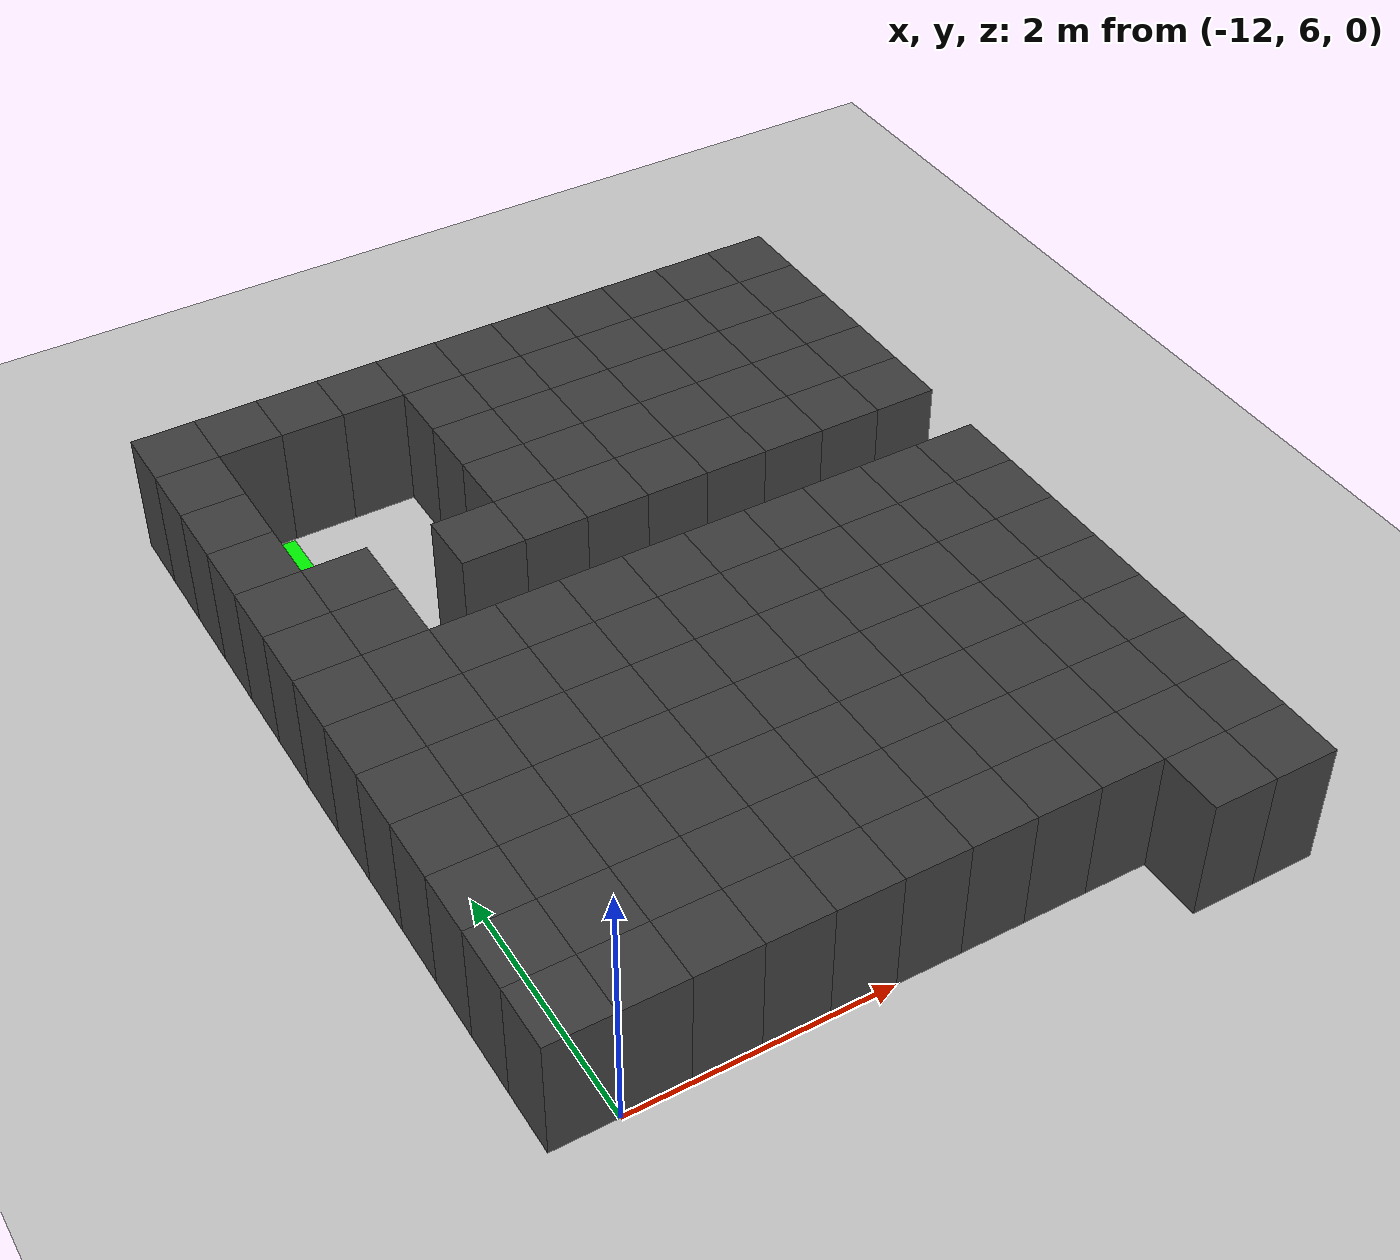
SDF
<sdf version="1.7">
 <world name="map_11779">
  <model name="ground_plane">
   <static>true</static>
   <link name="link">
    <collision name="collision">
     <geometry><plane><normal>0 0 1</normal><size>200 200</size></plane></geometry>
    </collision>
    <visual name="visual">
     <geometry><plane><normal>0 0 1</normal><size>200 200</size></plane></geometry>
     <material><ambient>0.8 0.8 0.8 1</ambient><diffuse>0.8 0.8 0.8 1</diffuse></material>
    </visual>
   </link>
  </model>
  <model name="maze_environment">
   <static>true</static>
   <link name="wall_0">
    <pose>-12.250 12.250 0.500 0 0 0</pose>
    <collision name="col"><geometry><box><size>0.5 0.5 1.0</size></box></geometry></collision>
    <visual name="vis">
     <geometry><box><size>0.5 0.5 1.0</size></box></geometry>
     <material><ambient>0.15 0.15 0.15 1</ambient><diffuse>0.25 0.25 0.25 1</diffuse></material>
    </visual>
   </link>
   <link name="wall_1">
    <pose>-11.750 12.250 0.500 0 0 0</pose>
    <collision name="col"><geometry><box><size>0.5 0.5 1.0</size></box></geometry></collision>
    <visual name="vis">
     <geometry><box><size>0.5 0.5 1.0</size></box></geometry>
     <material><ambient>0.15 0.15 0.15 1</ambient><diffuse>0.25 0.25 0.25 1</diffuse></material>
    </visual>
   </link>
   <link name="wall_2">
    <pose>-11.250 12.250 0.500 0 0 0</pose>
    <collision name="col"><geometry><box><size>0.5 0.5 1.0</size></box></geometry></collision>
    <visual name="vis">
     <geometry><box><size>0.5 0.5 1.0</size></box></geometry>
     <material><ambient>0.15 0.15 0.15 1</ambient><diffuse>0.25 0.25 0.25 1</diffuse></material>
    </visual>
   </link>
   <link name="wall_3">
    <pose>-10.750 12.250 0.500 0 0 0</pose>
    <collision name="col"><geometry><box><size>0.5 0.5 1.0</size></box></geometry></collision>
    <visual name="vis">
     <geometry><box><size>0.5 0.5 1.0</size></box></geometry>
     <material><ambient>0.15 0.15 0.15 1</ambient><diffuse>0.25 0.25 0.25 1</diffuse></material>
    </visual>
   </link>
   <link name="wall_4">
    <pose>-10.250 12.250 0.500 0 0 0</pose>
    <collision name="col"><geometry><box><size>0.5 0.5 1.0</size></box></geometry></collision>
    <visual name="vis">
     <geometry><box><size>0.5 0.5 1.0</size></box></geometry>
     <material><ambient>0.15 0.15 0.15 1</ambient><diffuse>0.25 0.25 0.25 1</diffuse></material>
    </visual>
   </link>
   <link name="wall_5">
    <pose>-9.750 12.250 0.500 0 0 0</pose>
    <collision name="col"><geometry><box><size>0.5 0.5 1.0</size></box></geometry></collision>
    <visual name="vis">
     <geometry><box><size>0.5 0.5 1.0</size></box></geometry>
     <material><ambient>0.15 0.15 0.15 1</ambient><diffuse>0.25 0.25 0.25 1</diffuse></material>
    </visual>
   </link>
   <link name="wall_6">
    <pose>-9.250 12.250 0.500 0 0 0</pose>
    <collision name="col"><geometry><box><size>0.5 0.5 1.0</size></box></geometry></collision>
    <visual name="vis">
     <geometry><box><size>0.5 0.5 1.0</size></box></geometry>
     <material><ambient>0.15 0.15 0.15 1</ambient><diffuse>0.25 0.25 0.25 1</diffuse></material>
    </visual>
   </link>
   <link name="wall_7">
    <pose>-8.750 12.250 0.500 0 0 0</pose>
    <collision name="col"><geometry><box><size>0.5 0.5 1.0</size></box></geometry></collision>
    <visual name="vis">
     <geometry><box><size>0.5 0.5 1.0</size></box></geometry>
     <material><ambient>0.15 0.15 0.15 1</ambient><diffuse>0.25 0.25 0.25 1</diffuse></material>
    </visual>
   </link>
   <link name="wall_8">
    <pose>-8.250 12.250 0.500 0 0 0</pose>
    <collision name="col"><geometry><box><size>0.5 0.5 1.0</size></box></geometry></collision>
    <visual name="vis">
     <geometry><box><size>0.5 0.5 1.0</size></box></geometry>
     <material><ambient>0.15 0.15 0.15 1</ambient><diffuse>0.25 0.25 0.25 1</diffuse></material>
    </visual>
   </link>
   <link name="wall_9">
    <pose>-7.750 12.250 0.500 0 0 0</pose>
    <collision name="col"><geometry><box><size>0.5 0.5 1.0</size></box></geometry></collision>
    <visual name="vis">
     <geometry><box><size>0.5 0.5 1.0</size></box></geometry>
     <material><ambient>0.15 0.15 0.15 1</ambient><diffuse>0.25 0.25 0.25 1</diffuse></material>
    </visual>
   </link>
   <link name="wall_10">
    <pose>-7.250 12.250 0.500 0 0 0</pose>
    <collision name="col"><geometry><box><size>0.5 0.5 1.0</size></box></geometry></collision>
    <visual name="vis">
     <geometry><box><size>0.5 0.5 1.0</size></box></geometry>
     <material><ambient>0.15 0.15 0.15 1</ambient><diffuse>0.25 0.25 0.25 1</diffuse></material>
    </visual>
   </link>
   <link name="wall_50">
    <pose>-12.250 11.750 0.500 0 0 0</pose>
    <collision name="col"><geometry><box><size>0.5 0.5 1.0</size></box></geometry></collision>
    <visual name="vis">
     <geometry><box><size>0.5 0.5 1.0</size></box></geometry>
     <material><ambient>0.15 0.15 0.15 1</ambient><diffuse>0.25 0.25 0.25 1</diffuse></material>
    </visual>
   </link>
   <link name="wall_51">
    <pose>-10.250 11.750 0.500 0 0 0</pose>
    <collision name="col"><geometry><box><size>0.5 0.5 1.0</size></box></geometry></collision>
    <visual name="vis">
     <geometry><box><size>0.5 0.5 1.0</size></box></geometry>
     <material><ambient>0.15 0.15 0.15 1</ambient><diffuse>0.25 0.25 0.25 1</diffuse></material>
    </visual>
   </link>
   <link name="wall_52">
    <pose>-9.750 11.750 0.500 0 0 0</pose>
    <collision name="col"><geometry><box><size>0.5 0.5 1.0</size></box></geometry></collision>
    <visual name="vis">
     <geometry><box><size>0.5 0.5 1.0</size></box></geometry>
     <material><ambient>0.15 0.15 0.15 1</ambient><diffuse>0.25 0.25 0.25 1</diffuse></material>
    </visual>
   </link>
   <link name="wall_53">
    <pose>-9.250 11.750 0.500 0 0 0</pose>
    <collision name="col"><geometry><box><size>0.5 0.5 1.0</size></box></geometry></collision>
    <visual name="vis">
     <geometry><box><size>0.5 0.5 1.0</size></box></geometry>
     <material><ambient>0.15 0.15 0.15 1</ambient><diffuse>0.25 0.25 0.25 1</diffuse></material>
    </visual>
   </link>
   <link name="wall_54">
    <pose>-8.750 11.750 0.500 0 0 0</pose>
    <collision name="col"><geometry><box><size>0.5 0.5 1.0</size></box></geometry></collision>
    <visual name="vis">
     <geometry><box><size>0.5 0.5 1.0</size></box></geometry>
     <material><ambient>0.15 0.15 0.15 1</ambient><diffuse>0.25 0.25 0.25 1</diffuse></material>
    </visual>
   </link>
   <link name="wall_55">
    <pose>-8.250 11.750 0.500 0 0 0</pose>
    <collision name="col"><geometry><box><size>0.5 0.5 1.0</size></box></geometry></collision>
    <visual name="vis">
     <geometry><box><size>0.5 0.5 1.0</size></box></geometry>
     <material><ambient>0.15 0.15 0.15 1</ambient><diffuse>0.25 0.25 0.25 1</diffuse></material>
    </visual>
   </link>
   <link name="wall_56">
    <pose>-7.750 11.750 0.500 0 0 0</pose>
    <collision name="col"><geometry><box><size>0.5 0.5 1.0</size></box></geometry></collision>
    <visual name="vis">
     <geometry><box><size>0.5 0.5 1.0</size></box></geometry>
     <material><ambient>0.15 0.15 0.15 1</ambient><diffuse>0.25 0.25 0.25 1</diffuse></material>
    </visual>
   </link>
   <link name="wall_57">
    <pose>-7.250 11.750 0.500 0 0 0</pose>
    <collision name="col"><geometry><box><size>0.5 0.5 1.0</size></box></geometry></collision>
    <visual name="vis">
     <geometry><box><size>0.5 0.5 1.0</size></box></geometry>
     <material><ambient>0.15 0.15 0.15 1</ambient><diffuse>0.25 0.25 0.25 1</diffuse></material>
    </visual>
   </link>
   <link name="wall_91">
    <pose>-12.250 11.250 0.500 0 0 0</pose>
    <collision name="col"><geometry><box><size>0.5 0.5 1.0</size></box></geometry></collision>
    <visual name="vis">
     <geometry><box><size>0.5 0.5 1.0</size></box></geometry>
     <material><ambient>0.15 0.15 0.15 1</ambient><diffuse>0.25 0.25 0.25 1</diffuse></material>
    </visual>
   </link>
   <link name="wall_92">
    <pose>-10.250 11.250 0.500 0 0 0</pose>
    <collision name="col"><geometry><box><size>0.5 0.5 1.0</size></box></geometry></collision>
    <visual name="vis">
     <geometry><box><size>0.5 0.5 1.0</size></box></geometry>
     <material><ambient>0.15 0.15 0.15 1</ambient><diffuse>0.25 0.25 0.25 1</diffuse></material>
    </visual>
   </link>
   <link name="wall_93">
    <pose>-9.750 11.250 0.500 0 0 0</pose>
    <collision name="col"><geometry><box><size>0.5 0.5 1.0</size></box></geometry></collision>
    <visual name="vis">
     <geometry><box><size>0.5 0.5 1.0</size></box></geometry>
     <material><ambient>0.15 0.15 0.15 1</ambient><diffuse>0.25 0.25 0.25 1</diffuse></material>
    </visual>
   </link>
   <link name="wall_94">
    <pose>-9.250 11.250 0.500 0 0 0</pose>
    <collision name="col"><geometry><box><size>0.5 0.5 1.0</size></box></geometry></collision>
    <visual name="vis">
     <geometry><box><size>0.5 0.5 1.0</size></box></geometry>
     <material><ambient>0.15 0.15 0.15 1</ambient><diffuse>0.25 0.25 0.25 1</diffuse></material>
    </visual>
   </link>
   <link name="wall_95">
    <pose>-8.750 11.250 0.500 0 0 0</pose>
    <collision name="col"><geometry><box><size>0.5 0.5 1.0</size></box></geometry></collision>
    <visual name="vis">
     <geometry><box><size>0.5 0.5 1.0</size></box></geometry>
     <material><ambient>0.15 0.15 0.15 1</ambient><diffuse>0.25 0.25 0.25 1</diffuse></material>
    </visual>
   </link>
   <link name="wall_96">
    <pose>-8.250 11.250 0.500 0 0 0</pose>
    <collision name="col"><geometry><box><size>0.5 0.5 1.0</size></box></geometry></collision>
    <visual name="vis">
     <geometry><box><size>0.5 0.5 1.0</size></box></geometry>
     <material><ambient>0.15 0.15 0.15 1</ambient><diffuse>0.25 0.25 0.25 1</diffuse></material>
    </visual>
   </link>
   <link name="wall_97">
    <pose>-7.750 11.250 0.500 0 0 0</pose>
    <collision name="col"><geometry><box><size>0.5 0.5 1.0</size></box></geometry></collision>
    <visual name="vis">
     <geometry><box><size>0.5 0.5 1.0</size></box></geometry>
     <material><ambient>0.15 0.15 0.15 1</ambient><diffuse>0.25 0.25 0.25 1</diffuse></material>
    </visual>
   </link>
   <link name="wall_98">
    <pose>-7.250 11.250 0.500 0 0 0</pose>
    <collision name="col"><geometry><box><size>0.5 0.5 1.0</size></box></geometry></collision>
    <visual name="vis">
     <geometry><box><size>0.5 0.5 1.0</size></box></geometry>
     <material><ambient>0.15 0.15 0.15 1</ambient><diffuse>0.25 0.25 0.25 1</diffuse></material>
    </visual>
   </link>
   <link name="wall_132">
    <pose>-12.250 10.750 0.500 0 0 0</pose>
    <collision name="col"><geometry><box><size>0.5 0.5 1.0</size></box></geometry></collision>
    <visual name="vis">
     <geometry><box><size>0.5 0.5 1.0</size></box></geometry>
     <material><ambient>0.15 0.15 0.15 1</ambient><diffuse>0.25 0.25 0.25 1</diffuse></material>
    </visual>
   </link>
   <link name="wall_133">
    <pose>-10.250 10.750 0.500 0 0 0</pose>
    <collision name="col"><geometry><box><size>0.5 0.5 1.0</size></box></geometry></collision>
    <visual name="vis">
     <geometry><box><size>0.5 0.5 1.0</size></box></geometry>
     <material><ambient>0.15 0.15 0.15 1</ambient><diffuse>0.25 0.25 0.25 1</diffuse></material>
    </visual>
   </link>
   <link name="wall_134">
    <pose>-9.750 10.750 0.500 0 0 0</pose>
    <collision name="col"><geometry><box><size>0.5 0.5 1.0</size></box></geometry></collision>
    <visual name="vis">
     <geometry><box><size>0.5 0.5 1.0</size></box></geometry>
     <material><ambient>0.15 0.15 0.15 1</ambient><diffuse>0.25 0.25 0.25 1</diffuse></material>
    </visual>
   </link>
   <link name="wall_135">
    <pose>-9.250 10.750 0.500 0 0 0</pose>
    <collision name="col"><geometry><box><size>0.5 0.5 1.0</size></box></geometry></collision>
    <visual name="vis">
     <geometry><box><size>0.5 0.5 1.0</size></box></geometry>
     <material><ambient>0.15 0.15 0.15 1</ambient><diffuse>0.25 0.25 0.25 1</diffuse></material>
    </visual>
   </link>
   <link name="wall_136">
    <pose>-8.750 10.750 0.500 0 0 0</pose>
    <collision name="col"><geometry><box><size>0.5 0.5 1.0</size></box></geometry></collision>
    <visual name="vis">
     <geometry><box><size>0.5 0.5 1.0</size></box></geometry>
     <material><ambient>0.15 0.15 0.15 1</ambient><diffuse>0.25 0.25 0.25 1</diffuse></material>
    </visual>
   </link>
   <link name="wall_137">
    <pose>-8.250 10.750 0.500 0 0 0</pose>
    <collision name="col"><geometry><box><size>0.5 0.5 1.0</size></box></geometry></collision>
    <visual name="vis">
     <geometry><box><size>0.5 0.5 1.0</size></box></geometry>
     <material><ambient>0.15 0.15 0.15 1</ambient><diffuse>0.25 0.25 0.25 1</diffuse></material>
    </visual>
   </link>
   <link name="wall_138">
    <pose>-7.750 10.750 0.500 0 0 0</pose>
    <collision name="col"><geometry><box><size>0.5 0.5 1.0</size></box></geometry></collision>
    <visual name="vis">
     <geometry><box><size>0.5 0.5 1.0</size></box></geometry>
     <material><ambient>0.15 0.15 0.15 1</ambient><diffuse>0.25 0.25 0.25 1</diffuse></material>
    </visual>
   </link>
   <link name="wall_139">
    <pose>-7.250 10.750 0.500 0 0 0</pose>
    <collision name="col"><geometry><box><size>0.5 0.5 1.0</size></box></geometry></collision>
    <visual name="vis">
     <geometry><box><size>0.5 0.5 1.0</size></box></geometry>
     <material><ambient>0.15 0.15 0.15 1</ambient><diffuse>0.25 0.25 0.25 1</diffuse></material>
    </visual>
   </link>
   <link name="wall_173">
    <pose>-12.250 10.250 0.500 0 0 0</pose>
    <collision name="col"><geometry><box><size>0.5 0.5 1.0</size></box></geometry></collision>
    <visual name="vis">
     <geometry><box><size>0.5 0.5 1.0</size></box></geometry>
     <material><ambient>0.15 0.15 0.15 1</ambient><diffuse>0.25 0.25 0.25 1</diffuse></material>
    </visual>
   </link>
   <link name="wall_174">
    <pose>-11.750 10.250 0.500 0 0 0</pose>
    <collision name="col"><geometry><box><size>0.5 0.5 1.0</size></box></geometry></collision>
    <visual name="vis">
     <geometry><box><size>0.5 0.5 1.0</size></box></geometry>
     <material><ambient>0.15 0.15 0.15 1</ambient><diffuse>0.25 0.25 0.25 1</diffuse></material>
    </visual>
   </link>
   <link name="wall_175">
    <pose>-10.750 10.250 0.500 0 0 0</pose>
    <collision name="col"><geometry><box><size>0.5 0.5 1.0</size></box></geometry></collision>
    <visual name="vis">
     <geometry><box><size>0.5 0.5 1.0</size></box></geometry>
     <material><ambient>0.15 0.15 0.15 1</ambient><diffuse>0.25 0.25 0.25 1</diffuse></material>
    </visual>
   </link>
   <link name="wall_176">
    <pose>-10.250 10.250 0.500 0 0 0</pose>
    <collision name="col"><geometry><box><size>0.5 0.5 1.0</size></box></geometry></collision>
    <visual name="vis">
     <geometry><box><size>0.5 0.5 1.0</size></box></geometry>
     <material><ambient>0.15 0.15 0.15 1</ambient><diffuse>0.25 0.25 0.25 1</diffuse></material>
    </visual>
   </link>
   <link name="wall_177">
    <pose>-9.750 10.250 0.500 0 0 0</pose>
    <collision name="col"><geometry><box><size>0.5 0.5 1.0</size></box></geometry></collision>
    <visual name="vis">
     <geometry><box><size>0.5 0.5 1.0</size></box></geometry>
     <material><ambient>0.15 0.15 0.15 1</ambient><diffuse>0.25 0.25 0.25 1</diffuse></material>
    </visual>
   </link>
   <link name="wall_178">
    <pose>-9.250 10.250 0.500 0 0 0</pose>
    <collision name="col"><geometry><box><size>0.5 0.5 1.0</size></box></geometry></collision>
    <visual name="vis">
     <geometry><box><size>0.5 0.5 1.0</size></box></geometry>
     <material><ambient>0.15 0.15 0.15 1</ambient><diffuse>0.25 0.25 0.25 1</diffuse></material>
    </visual>
   </link>
   <link name="wall_179">
    <pose>-8.750 10.250 0.500 0 0 0</pose>
    <collision name="col"><geometry><box><size>0.5 0.5 1.0</size></box></geometry></collision>
    <visual name="vis">
     <geometry><box><size>0.5 0.5 1.0</size></box></geometry>
     <material><ambient>0.15 0.15 0.15 1</ambient><diffuse>0.25 0.25 0.25 1</diffuse></material>
    </visual>
   </link>
   <link name="wall_180">
    <pose>-8.250 10.250 0.500 0 0 0</pose>
    <collision name="col"><geometry><box><size>0.5 0.5 1.0</size></box></geometry></collision>
    <visual name="vis">
     <geometry><box><size>0.5 0.5 1.0</size></box></geometry>
     <material><ambient>0.15 0.15 0.15 1</ambient><diffuse>0.25 0.25 0.25 1</diffuse></material>
    </visual>
   </link>
   <link name="wall_181">
    <pose>-7.750 10.250 0.500 0 0 0</pose>
    <collision name="col"><geometry><box><size>0.5 0.5 1.0</size></box></geometry></collision>
    <visual name="vis">
     <geometry><box><size>0.5 0.5 1.0</size></box></geometry>
     <material><ambient>0.15 0.15 0.15 1</ambient><diffuse>0.25 0.25 0.25 1</diffuse></material>
    </visual>
   </link>
   <link name="wall_182">
    <pose>-7.250 10.250 0.500 0 0 0</pose>
    <collision name="col"><geometry><box><size>0.5 0.5 1.0</size></box></geometry></collision>
    <visual name="vis">
     <geometry><box><size>0.5 0.5 1.0</size></box></geometry>
     <material><ambient>0.15 0.15 0.15 1</ambient><diffuse>0.25 0.25 0.25 1</diffuse></material>
    </visual>
   </link>
   <link name="wall_216">
    <pose>-12.250 9.750 0.500 0 0 0</pose>
    <collision name="col"><geometry><box><size>0.5 0.5 1.0</size></box></geometry></collision>
    <visual name="vis">
     <geometry><box><size>0.5 0.5 1.0</size></box></geometry>
     <material><ambient>0.15 0.15 0.15 1</ambient><diffuse>0.25 0.25 0.25 1</diffuse></material>
    </visual>
   </link>
   <link name="wall_217">
    <pose>-11.750 9.750 0.500 0 0 0</pose>
    <collision name="col"><geometry><box><size>0.5 0.5 1.0</size></box></geometry></collision>
    <visual name="vis">
     <geometry><box><size>0.5 0.5 1.0</size></box></geometry>
     <material><ambient>0.15 0.15 0.15 1</ambient><diffuse>0.25 0.25 0.25 1</diffuse></material>
    </visual>
   </link>
   <link name="wall_249">
    <pose>-12.250 9.250 0.500 0 0 0</pose>
    <collision name="col"><geometry><box><size>0.5 0.5 1.0</size></box></geometry></collision>
    <visual name="vis">
     <geometry><box><size>0.5 0.5 1.0</size></box></geometry>
     <material><ambient>0.15 0.15 0.15 1</ambient><diffuse>0.25 0.25 0.25 1</diffuse></material>
    </visual>
   </link>
   <link name="wall_250">
    <pose>-11.750 9.250 0.500 0 0 0</pose>
    <collision name="col"><geometry><box><size>0.5 0.5 1.0</size></box></geometry></collision>
    <visual name="vis">
     <geometry><box><size>0.5 0.5 1.0</size></box></geometry>
     <material><ambient>0.15 0.15 0.15 1</ambient><diffuse>0.25 0.25 0.25 1</diffuse></material>
    </visual>
   </link>
   <link name="wall_251">
    <pose>-11.250 9.250 0.500 0 0 0</pose>
    <collision name="col"><geometry><box><size>0.5 0.5 1.0</size></box></geometry></collision>
    <visual name="vis">
     <geometry><box><size>0.5 0.5 1.0</size></box></geometry>
     <material><ambient>0.15 0.15 0.15 1</ambient><diffuse>0.25 0.25 0.25 1</diffuse></material>
    </visual>
   </link>
   <link name="wall_252">
    <pose>-10.750 9.250 0.500 0 0 0</pose>
    <collision name="col"><geometry><box><size>0.5 0.5 1.0</size></box></geometry></collision>
    <visual name="vis">
     <geometry><box><size>0.5 0.5 1.0</size></box></geometry>
     <material><ambient>0.15 0.15 0.15 1</ambient><diffuse>0.25 0.25 0.25 1</diffuse></material>
    </visual>
   </link>
   <link name="wall_253">
    <pose>-10.250 9.250 0.500 0 0 0</pose>
    <collision name="col"><geometry><box><size>0.5 0.5 1.0</size></box></geometry></collision>
    <visual name="vis">
     <geometry><box><size>0.5 0.5 1.0</size></box></geometry>
     <material><ambient>0.15 0.15 0.15 1</ambient><diffuse>0.25 0.25 0.25 1</diffuse></material>
    </visual>
   </link>
   <link name="wall_254">
    <pose>-9.750 9.250 0.500 0 0 0</pose>
    <collision name="col"><geometry><box><size>0.5 0.5 1.0</size></box></geometry></collision>
    <visual name="vis">
     <geometry><box><size>0.5 0.5 1.0</size></box></geometry>
     <material><ambient>0.15 0.15 0.15 1</ambient><diffuse>0.25 0.25 0.25 1</diffuse></material>
    </visual>
   </link>
   <link name="wall_255">
    <pose>-9.250 9.250 0.500 0 0 0</pose>
    <collision name="col"><geometry><box><size>0.5 0.5 1.0</size></box></geometry></collision>
    <visual name="vis">
     <geometry><box><size>0.5 0.5 1.0</size></box></geometry>
     <material><ambient>0.15 0.15 0.15 1</ambient><diffuse>0.25 0.25 0.25 1</diffuse></material>
    </visual>
   </link>
   <link name="wall_256">
    <pose>-8.750 9.250 0.500 0 0 0</pose>
    <collision name="col"><geometry><box><size>0.5 0.5 1.0</size></box></geometry></collision>
    <visual name="vis">
     <geometry><box><size>0.5 0.5 1.0</size></box></geometry>
     <material><ambient>0.15 0.15 0.15 1</ambient><diffuse>0.25 0.25 0.25 1</diffuse></material>
    </visual>
   </link>
   <link name="wall_257">
    <pose>-8.250 9.250 0.500 0 0 0</pose>
    <collision name="col"><geometry><box><size>0.5 0.5 1.0</size></box></geometry></collision>
    <visual name="vis">
     <geometry><box><size>0.5 0.5 1.0</size></box></geometry>
     <material><ambient>0.15 0.15 0.15 1</ambient><diffuse>0.25 0.25 0.25 1</diffuse></material>
    </visual>
   </link>
   <link name="wall_258">
    <pose>-7.750 9.250 0.500 0 0 0</pose>
    <collision name="col"><geometry><box><size>0.5 0.5 1.0</size></box></geometry></collision>
    <visual name="vis">
     <geometry><box><size>0.5 0.5 1.0</size></box></geometry>
     <material><ambient>0.15 0.15 0.15 1</ambient><diffuse>0.25 0.25 0.25 1</diffuse></material>
    </visual>
   </link>
   <link name="wall_259">
    <pose>-7.250 9.250 0.500 0 0 0</pose>
    <collision name="col"><geometry><box><size>0.5 0.5 1.0</size></box></geometry></collision>
    <visual name="vis">
     <geometry><box><size>0.5 0.5 1.0</size></box></geometry>
     <material><ambient>0.15 0.15 0.15 1</ambient><diffuse>0.25 0.25 0.25 1</diffuse></material>
    </visual>
   </link>
   <link name="wall_293">
    <pose>-12.250 8.750 0.500 0 0 0</pose>
    <collision name="col"><geometry><box><size>0.5 0.5 1.0</size></box></geometry></collision>
    <visual name="vis">
     <geometry><box><size>0.5 0.5 1.0</size></box></geometry>
     <material><ambient>0.15 0.15 0.15 1</ambient><diffuse>0.25 0.25 0.25 1</diffuse></material>
    </visual>
   </link>
   <link name="wall_294">
    <pose>-11.750 8.750 0.500 0 0 0</pose>
    <collision name="col"><geometry><box><size>0.5 0.5 1.0</size></box></geometry></collision>
    <visual name="vis">
     <geometry><box><size>0.5 0.5 1.0</size></box></geometry>
     <material><ambient>0.15 0.15 0.15 1</ambient><diffuse>0.25 0.25 0.25 1</diffuse></material>
    </visual>
   </link>
   <link name="wall_295">
    <pose>-11.250 8.750 0.500 0 0 0</pose>
    <collision name="col"><geometry><box><size>0.5 0.5 1.0</size></box></geometry></collision>
    <visual name="vis">
     <geometry><box><size>0.5 0.5 1.0</size></box></geometry>
     <material><ambient>0.15 0.15 0.15 1</ambient><diffuse>0.25 0.25 0.25 1</diffuse></material>
    </visual>
   </link>
   <link name="wall_296">
    <pose>-10.750 8.750 0.500 0 0 0</pose>
    <collision name="col"><geometry><box><size>0.5 0.5 1.0</size></box></geometry></collision>
    <visual name="vis">
     <geometry><box><size>0.5 0.5 1.0</size></box></geometry>
     <material><ambient>0.15 0.15 0.15 1</ambient><diffuse>0.25 0.25 0.25 1</diffuse></material>
    </visual>
   </link>
   <link name="wall_297">
    <pose>-10.250 8.750 0.500 0 0 0</pose>
    <collision name="col"><geometry><box><size>0.5 0.5 1.0</size></box></geometry></collision>
    <visual name="vis">
     <geometry><box><size>0.5 0.5 1.0</size></box></geometry>
     <material><ambient>0.15 0.15 0.15 1</ambient><diffuse>0.25 0.25 0.25 1</diffuse></material>
    </visual>
   </link>
   <link name="wall_298">
    <pose>-9.750 8.750 0.500 0 0 0</pose>
    <collision name="col"><geometry><box><size>0.5 0.5 1.0</size></box></geometry></collision>
    <visual name="vis">
     <geometry><box><size>0.5 0.5 1.0</size></box></geometry>
     <material><ambient>0.15 0.15 0.15 1</ambient><diffuse>0.25 0.25 0.25 1</diffuse></material>
    </visual>
   </link>
   <link name="wall_299">
    <pose>-9.250 8.750 0.500 0 0 0</pose>
    <collision name="col"><geometry><box><size>0.5 0.5 1.0</size></box></geometry></collision>
    <visual name="vis">
     <geometry><box><size>0.5 0.5 1.0</size></box></geometry>
     <material><ambient>0.15 0.15 0.15 1</ambient><diffuse>0.25 0.25 0.25 1</diffuse></material>
    </visual>
   </link>
   <link name="wall_300">
    <pose>-8.750 8.750 0.500 0 0 0</pose>
    <collision name="col"><geometry><box><size>0.5 0.5 1.0</size></box></geometry></collision>
    <visual name="vis">
     <geometry><box><size>0.5 0.5 1.0</size></box></geometry>
     <material><ambient>0.15 0.15 0.15 1</ambient><diffuse>0.25 0.25 0.25 1</diffuse></material>
    </visual>
   </link>
   <link name="wall_301">
    <pose>-8.250 8.750 0.500 0 0 0</pose>
    <collision name="col"><geometry><box><size>0.5 0.5 1.0</size></box></geometry></collision>
    <visual name="vis">
     <geometry><box><size>0.5 0.5 1.0</size></box></geometry>
     <material><ambient>0.15 0.15 0.15 1</ambient><diffuse>0.25 0.25 0.25 1</diffuse></material>
    </visual>
   </link>
   <link name="wall_302">
    <pose>-7.750 8.750 0.500 0 0 0</pose>
    <collision name="col"><geometry><box><size>0.5 0.5 1.0</size></box></geometry></collision>
    <visual name="vis">
     <geometry><box><size>0.5 0.5 1.0</size></box></geometry>
     <material><ambient>0.15 0.15 0.15 1</ambient><diffuse>0.25 0.25 0.25 1</diffuse></material>
    </visual>
   </link>
   <link name="wall_303">
    <pose>-7.250 8.750 0.500 0 0 0</pose>
    <collision name="col"><geometry><box><size>0.5 0.5 1.0</size></box></geometry></collision>
    <visual name="vis">
     <geometry><box><size>0.5 0.5 1.0</size></box></geometry>
     <material><ambient>0.15 0.15 0.15 1</ambient><diffuse>0.25 0.25 0.25 1</diffuse></material>
    </visual>
   </link>
   <link name="wall_337">
    <pose>-12.250 8.250 0.500 0 0 0</pose>
    <collision name="col"><geometry><box><size>0.5 0.5 1.0</size></box></geometry></collision>
    <visual name="vis">
     <geometry><box><size>0.5 0.5 1.0</size></box></geometry>
     <material><ambient>0.15 0.15 0.15 1</ambient><diffuse>0.25 0.25 0.25 1</diffuse></material>
    </visual>
   </link>
   <link name="wall_338">
    <pose>-11.750 8.250 0.500 0 0 0</pose>
    <collision name="col"><geometry><box><size>0.5 0.5 1.0</size></box></geometry></collision>
    <visual name="vis">
     <geometry><box><size>0.5 0.5 1.0</size></box></geometry>
     <material><ambient>0.15 0.15 0.15 1</ambient><diffuse>0.25 0.25 0.25 1</diffuse></material>
    </visual>
   </link>
   <link name="wall_339">
    <pose>-11.250 8.250 0.500 0 0 0</pose>
    <collision name="col"><geometry><box><size>0.5 0.5 1.0</size></box></geometry></collision>
    <visual name="vis">
     <geometry><box><size>0.5 0.5 1.0</size></box></geometry>
     <material><ambient>0.15 0.15 0.15 1</ambient><diffuse>0.25 0.25 0.25 1</diffuse></material>
    </visual>
   </link>
   <link name="wall_340">
    <pose>-10.750 8.250 0.500 0 0 0</pose>
    <collision name="col"><geometry><box><size>0.5 0.5 1.0</size></box></geometry></collision>
    <visual name="vis">
     <geometry><box><size>0.5 0.5 1.0</size></box></geometry>
     <material><ambient>0.15 0.15 0.15 1</ambient><diffuse>0.25 0.25 0.25 1</diffuse></material>
    </visual>
   </link>
   <link name="wall_341">
    <pose>-10.250 8.250 0.500 0 0 0</pose>
    <collision name="col"><geometry><box><size>0.5 0.5 1.0</size></box></geometry></collision>
    <visual name="vis">
     <geometry><box><size>0.5 0.5 1.0</size></box></geometry>
     <material><ambient>0.15 0.15 0.15 1</ambient><diffuse>0.25 0.25 0.25 1</diffuse></material>
    </visual>
   </link>
   <link name="wall_342">
    <pose>-9.750 8.250 0.500 0 0 0</pose>
    <collision name="col"><geometry><box><size>0.5 0.5 1.0</size></box></geometry></collision>
    <visual name="vis">
     <geometry><box><size>0.5 0.5 1.0</size></box></geometry>
     <material><ambient>0.15 0.15 0.15 1</ambient><diffuse>0.25 0.25 0.25 1</diffuse></material>
    </visual>
   </link>
   <link name="wall_343">
    <pose>-9.250 8.250 0.500 0 0 0</pose>
    <collision name="col"><geometry><box><size>0.5 0.5 1.0</size></box></geometry></collision>
    <visual name="vis">
     <geometry><box><size>0.5 0.5 1.0</size></box></geometry>
     <material><ambient>0.15 0.15 0.15 1</ambient><diffuse>0.25 0.25 0.25 1</diffuse></material>
    </visual>
   </link>
   <link name="wall_344">
    <pose>-8.750 8.250 0.500 0 0 0</pose>
    <collision name="col"><geometry><box><size>0.5 0.5 1.0</size></box></geometry></collision>
    <visual name="vis">
     <geometry><box><size>0.5 0.5 1.0</size></box></geometry>
     <material><ambient>0.15 0.15 0.15 1</ambient><diffuse>0.25 0.25 0.25 1</diffuse></material>
    </visual>
   </link>
   <link name="wall_345">
    <pose>-8.250 8.250 0.500 0 0 0</pose>
    <collision name="col"><geometry><box><size>0.5 0.5 1.0</size></box></geometry></collision>
    <visual name="vis">
     <geometry><box><size>0.5 0.5 1.0</size></box></geometry>
     <material><ambient>0.15 0.15 0.15 1</ambient><diffuse>0.25 0.25 0.25 1</diffuse></material>
    </visual>
   </link>
   <link name="wall_346">
    <pose>-7.750 8.250 0.500 0 0 0</pose>
    <collision name="col"><geometry><box><size>0.5 0.5 1.0</size></box></geometry></collision>
    <visual name="vis">
     <geometry><box><size>0.5 0.5 1.0</size></box></geometry>
     <material><ambient>0.15 0.15 0.15 1</ambient><diffuse>0.25 0.25 0.25 1</diffuse></material>
    </visual>
   </link>
   <link name="wall_347">
    <pose>-7.250 8.250 0.500 0 0 0</pose>
    <collision name="col"><geometry><box><size>0.5 0.5 1.0</size></box></geometry></collision>
    <visual name="vis">
     <geometry><box><size>0.5 0.5 1.0</size></box></geometry>
     <material><ambient>0.15 0.15 0.15 1</ambient><diffuse>0.25 0.25 0.25 1</diffuse></material>
    </visual>
   </link>
   <link name="wall_381">
    <pose>-12.250 7.750 0.500 0 0 0</pose>
    <collision name="col"><geometry><box><size>0.5 0.5 1.0</size></box></geometry></collision>
    <visual name="vis">
     <geometry><box><size>0.5 0.5 1.0</size></box></geometry>
     <material><ambient>0.15 0.15 0.15 1</ambient><diffuse>0.25 0.25 0.25 1</diffuse></material>
    </visual>
   </link>
   <link name="wall_382">
    <pose>-11.750 7.750 0.500 0 0 0</pose>
    <collision name="col"><geometry><box><size>0.5 0.5 1.0</size></box></geometry></collision>
    <visual name="vis">
     <geometry><box><size>0.5 0.5 1.0</size></box></geometry>
     <material><ambient>0.15 0.15 0.15 1</ambient><diffuse>0.25 0.25 0.25 1</diffuse></material>
    </visual>
   </link>
   <link name="wall_383">
    <pose>-11.250 7.750 0.500 0 0 0</pose>
    <collision name="col"><geometry><box><size>0.5 0.5 1.0</size></box></geometry></collision>
    <visual name="vis">
     <geometry><box><size>0.5 0.5 1.0</size></box></geometry>
     <material><ambient>0.15 0.15 0.15 1</ambient><diffuse>0.25 0.25 0.25 1</diffuse></material>
    </visual>
   </link>
   <link name="wall_384">
    <pose>-10.750 7.750 0.500 0 0 0</pose>
    <collision name="col"><geometry><box><size>0.5 0.5 1.0</size></box></geometry></collision>
    <visual name="vis">
     <geometry><box><size>0.5 0.5 1.0</size></box></geometry>
     <material><ambient>0.15 0.15 0.15 1</ambient><diffuse>0.25 0.25 0.25 1</diffuse></material>
    </visual>
   </link>
   <link name="wall_385">
    <pose>-10.250 7.750 0.500 0 0 0</pose>
    <collision name="col"><geometry><box><size>0.5 0.5 1.0</size></box></geometry></collision>
    <visual name="vis">
     <geometry><box><size>0.5 0.5 1.0</size></box></geometry>
     <material><ambient>0.15 0.15 0.15 1</ambient><diffuse>0.25 0.25 0.25 1</diffuse></material>
    </visual>
   </link>
   <link name="wall_386">
    <pose>-9.750 7.750 0.500 0 0 0</pose>
    <collision name="col"><geometry><box><size>0.5 0.5 1.0</size></box></geometry></collision>
    <visual name="vis">
     <geometry><box><size>0.5 0.5 1.0</size></box></geometry>
     <material><ambient>0.15 0.15 0.15 1</ambient><diffuse>0.25 0.25 0.25 1</diffuse></material>
    </visual>
   </link>
   <link name="wall_387">
    <pose>-9.250 7.750 0.500 0 0 0</pose>
    <collision name="col"><geometry><box><size>0.5 0.5 1.0</size></box></geometry></collision>
    <visual name="vis">
     <geometry><box><size>0.5 0.5 1.0</size></box></geometry>
     <material><ambient>0.15 0.15 0.15 1</ambient><diffuse>0.25 0.25 0.25 1</diffuse></material>
    </visual>
   </link>
   <link name="wall_388">
    <pose>-8.750 7.750 0.500 0 0 0</pose>
    <collision name="col"><geometry><box><size>0.5 0.5 1.0</size></box></geometry></collision>
    <visual name="vis">
     <geometry><box><size>0.5 0.5 1.0</size></box></geometry>
     <material><ambient>0.15 0.15 0.15 1</ambient><diffuse>0.25 0.25 0.25 1</diffuse></material>
    </visual>
   </link>
   <link name="wall_389">
    <pose>-8.250 7.750 0.500 0 0 0</pose>
    <collision name="col"><geometry><box><size>0.5 0.5 1.0</size></box></geometry></collision>
    <visual name="vis">
     <geometry><box><size>0.5 0.5 1.0</size></box></geometry>
     <material><ambient>0.15 0.15 0.15 1</ambient><diffuse>0.25 0.25 0.25 1</diffuse></material>
    </visual>
   </link>
   <link name="wall_390">
    <pose>-7.750 7.750 0.500 0 0 0</pose>
    <collision name="col"><geometry><box><size>0.5 0.5 1.0</size></box></geometry></collision>
    <visual name="vis">
     <geometry><box><size>0.5 0.5 1.0</size></box></geometry>
     <material><ambient>0.15 0.15 0.15 1</ambient><diffuse>0.25 0.25 0.25 1</diffuse></material>
    </visual>
   </link>
   <link name="wall_391">
    <pose>-7.250 7.750 0.500 0 0 0</pose>
    <collision name="col"><geometry><box><size>0.5 0.5 1.0</size></box></geometry></collision>
    <visual name="vis">
     <geometry><box><size>0.5 0.5 1.0</size></box></geometry>
     <material><ambient>0.15 0.15 0.15 1</ambient><diffuse>0.25 0.25 0.25 1</diffuse></material>
    </visual>
   </link>
   <link name="wall_422">
    <pose>-12.250 7.250 0.500 0 0 0</pose>
    <collision name="col"><geometry><box><size>0.5 0.5 1.0</size></box></geometry></collision>
    <visual name="vis">
     <geometry><box><size>0.5 0.5 1.0</size></box></geometry>
     <material><ambient>0.15 0.15 0.15 1</ambient><diffuse>0.25 0.25 0.25 1</diffuse></material>
    </visual>
   </link>
   <link name="wall_423">
    <pose>-11.750 7.250 0.500 0 0 0</pose>
    <collision name="col"><geometry><box><size>0.5 0.5 1.0</size></box></geometry></collision>
    <visual name="vis">
     <geometry><box><size>0.5 0.5 1.0</size></box></geometry>
     <material><ambient>0.15 0.15 0.15 1</ambient><diffuse>0.25 0.25 0.25 1</diffuse></material>
    </visual>
   </link>
   <link name="wall_424">
    <pose>-11.250 7.250 0.500 0 0 0</pose>
    <collision name="col"><geometry><box><size>0.5 0.5 1.0</size></box></geometry></collision>
    <visual name="vis">
     <geometry><box><size>0.5 0.5 1.0</size></box></geometry>
     <material><ambient>0.15 0.15 0.15 1</ambient><diffuse>0.25 0.25 0.25 1</diffuse></material>
    </visual>
   </link>
   <link name="wall_425">
    <pose>-10.750 7.250 0.500 0 0 0</pose>
    <collision name="col"><geometry><box><size>0.5 0.5 1.0</size></box></geometry></collision>
    <visual name="vis">
     <geometry><box><size>0.5 0.5 1.0</size></box></geometry>
     <material><ambient>0.15 0.15 0.15 1</ambient><diffuse>0.25 0.25 0.25 1</diffuse></material>
    </visual>
   </link>
   <link name="wall_426">
    <pose>-10.250 7.250 0.500 0 0 0</pose>
    <collision name="col"><geometry><box><size>0.5 0.5 1.0</size></box></geometry></collision>
    <visual name="vis">
     <geometry><box><size>0.5 0.5 1.0</size></box></geometry>
     <material><ambient>0.15 0.15 0.15 1</ambient><diffuse>0.25 0.25 0.25 1</diffuse></material>
    </visual>
   </link>
   <link name="wall_427">
    <pose>-9.750 7.250 0.500 0 0 0</pose>
    <collision name="col"><geometry><box><size>0.5 0.5 1.0</size></box></geometry></collision>
    <visual name="vis">
     <geometry><box><size>0.5 0.5 1.0</size></box></geometry>
     <material><ambient>0.15 0.15 0.15 1</ambient><diffuse>0.25 0.25 0.25 1</diffuse></material>
    </visual>
   </link>
   <link name="wall_428">
    <pose>-9.250 7.250 0.500 0 0 0</pose>
    <collision name="col"><geometry><box><size>0.5 0.5 1.0</size></box></geometry></collision>
    <visual name="vis">
     <geometry><box><size>0.5 0.5 1.0</size></box></geometry>
     <material><ambient>0.15 0.15 0.15 1</ambient><diffuse>0.25 0.25 0.25 1</diffuse></material>
    </visual>
   </link>
   <link name="wall_429">
    <pose>-8.750 7.250 0.500 0 0 0</pose>
    <collision name="col"><geometry><box><size>0.5 0.5 1.0</size></box></geometry></collision>
    <visual name="vis">
     <geometry><box><size>0.5 0.5 1.0</size></box></geometry>
     <material><ambient>0.15 0.15 0.15 1</ambient><diffuse>0.25 0.25 0.25 1</diffuse></material>
    </visual>
   </link>
   <link name="wall_430">
    <pose>-8.250 7.250 0.500 0 0 0</pose>
    <collision name="col"><geometry><box><size>0.5 0.5 1.0</size></box></geometry></collision>
    <visual name="vis">
     <geometry><box><size>0.5 0.5 1.0</size></box></geometry>
     <material><ambient>0.15 0.15 0.15 1</ambient><diffuse>0.25 0.25 0.25 1</diffuse></material>
    </visual>
   </link>
   <link name="wall_431">
    <pose>-7.750 7.250 0.500 0 0 0</pose>
    <collision name="col"><geometry><box><size>0.5 0.5 1.0</size></box></geometry></collision>
    <visual name="vis">
     <geometry><box><size>0.5 0.5 1.0</size></box></geometry>
     <material><ambient>0.15 0.15 0.15 1</ambient><diffuse>0.25 0.25 0.25 1</diffuse></material>
    </visual>
   </link>
   <link name="wall_432">
    <pose>-7.250 7.250 0.500 0 0 0</pose>
    <collision name="col"><geometry><box><size>0.5 0.5 1.0</size></box></geometry></collision>
    <visual name="vis">
     <geometry><box><size>0.5 0.5 1.0</size></box></geometry>
     <material><ambient>0.15 0.15 0.15 1</ambient><diffuse>0.25 0.25 0.25 1</diffuse></material>
    </visual>
   </link>
   <link name="wall_463">
    <pose>-12.250 6.750 0.500 0 0 0</pose>
    <collision name="col"><geometry><box><size>0.5 0.5 1.0</size></box></geometry></collision>
    <visual name="vis">
     <geometry><box><size>0.5 0.5 1.0</size></box></geometry>
     <material><ambient>0.15 0.15 0.15 1</ambient><diffuse>0.25 0.25 0.25 1</diffuse></material>
    </visual>
   </link>
   <link name="wall_464">
    <pose>-11.750 6.750 0.500 0 0 0</pose>
    <collision name="col"><geometry><box><size>0.5 0.5 1.0</size></box></geometry></collision>
    <visual name="vis">
     <geometry><box><size>0.5 0.5 1.0</size></box></geometry>
     <material><ambient>0.15 0.15 0.15 1</ambient><diffuse>0.25 0.25 0.25 1</diffuse></material>
    </visual>
   </link>
   <link name="wall_465">
    <pose>-11.250 6.750 0.500 0 0 0</pose>
    <collision name="col"><geometry><box><size>0.5 0.5 1.0</size></box></geometry></collision>
    <visual name="vis">
     <geometry><box><size>0.5 0.5 1.0</size></box></geometry>
     <material><ambient>0.15 0.15 0.15 1</ambient><diffuse>0.25 0.25 0.25 1</diffuse></material>
    </visual>
   </link>
   <link name="wall_466">
    <pose>-10.750 6.750 0.500 0 0 0</pose>
    <collision name="col"><geometry><box><size>0.5 0.5 1.0</size></box></geometry></collision>
    <visual name="vis">
     <geometry><box><size>0.5 0.5 1.0</size></box></geometry>
     <material><ambient>0.15 0.15 0.15 1</ambient><diffuse>0.25 0.25 0.25 1</diffuse></material>
    </visual>
   </link>
   <link name="wall_467">
    <pose>-10.250 6.750 0.500 0 0 0</pose>
    <collision name="col"><geometry><box><size>0.5 0.5 1.0</size></box></geometry></collision>
    <visual name="vis">
     <geometry><box><size>0.5 0.5 1.0</size></box></geometry>
     <material><ambient>0.15 0.15 0.15 1</ambient><diffuse>0.25 0.25 0.25 1</diffuse></material>
    </visual>
   </link>
   <link name="wall_468">
    <pose>-9.750 6.750 0.500 0 0 0</pose>
    <collision name="col"><geometry><box><size>0.5 0.5 1.0</size></box></geometry></collision>
    <visual name="vis">
     <geometry><box><size>0.5 0.5 1.0</size></box></geometry>
     <material><ambient>0.15 0.15 0.15 1</ambient><diffuse>0.25 0.25 0.25 1</diffuse></material>
    </visual>
   </link>
   <link name="wall_469">
    <pose>-9.250 6.750 0.500 0 0 0</pose>
    <collision name="col"><geometry><box><size>0.5 0.5 1.0</size></box></geometry></collision>
    <visual name="vis">
     <geometry><box><size>0.5 0.5 1.0</size></box></geometry>
     <material><ambient>0.15 0.15 0.15 1</ambient><diffuse>0.25 0.25 0.25 1</diffuse></material>
    </visual>
   </link>
   <link name="wall_470">
    <pose>-8.750 6.750 0.500 0 0 0</pose>
    <collision name="col"><geometry><box><size>0.5 0.5 1.0</size></box></geometry></collision>
    <visual name="vis">
     <geometry><box><size>0.5 0.5 1.0</size></box></geometry>
     <material><ambient>0.15 0.15 0.15 1</ambient><diffuse>0.25 0.25 0.25 1</diffuse></material>
    </visual>
   </link>
   <link name="wall_471">
    <pose>-8.250 6.750 0.500 0 0 0</pose>
    <collision name="col"><geometry><box><size>0.5 0.5 1.0</size></box></geometry></collision>
    <visual name="vis">
     <geometry><box><size>0.5 0.5 1.0</size></box></geometry>
     <material><ambient>0.15 0.15 0.15 1</ambient><diffuse>0.25 0.25 0.25 1</diffuse></material>
    </visual>
   </link>
   <link name="wall_472">
    <pose>-7.750 6.750 0.500 0 0 0</pose>
    <collision name="col"><geometry><box><size>0.5 0.5 1.0</size></box></geometry></collision>
    <visual name="vis">
     <geometry><box><size>0.5 0.5 1.0</size></box></geometry>
     <material><ambient>0.15 0.15 0.15 1</ambient><diffuse>0.25 0.25 0.25 1</diffuse></material>
    </visual>
   </link>
   <link name="wall_473">
    <pose>-7.250 6.750 0.500 0 0 0</pose>
    <collision name="col"><geometry><box><size>0.5 0.5 1.0</size></box></geometry></collision>
    <visual name="vis">
     <geometry><box><size>0.5 0.5 1.0</size></box></geometry>
     <material><ambient>0.15 0.15 0.15 1</ambient><diffuse>0.25 0.25 0.25 1</diffuse></material>
    </visual>
   </link>
   <link name="wall_504">
    <pose>-12.250 6.250 0.500 0 0 0</pose>
    <collision name="col"><geometry><box><size>0.5 0.5 1.0</size></box></geometry></collision>
    <visual name="vis">
     <geometry><box><size>0.5 0.5 1.0</size></box></geometry>
     <material><ambient>0.15 0.15 0.15 1</ambient><diffuse>0.25 0.25 0.25 1</diffuse></material>
    </visual>
   </link>
   <link name="wall_505">
    <pose>-11.750 6.250 0.500 0 0 0</pose>
    <collision name="col"><geometry><box><size>0.5 0.5 1.0</size></box></geometry></collision>
    <visual name="vis">
     <geometry><box><size>0.5 0.5 1.0</size></box></geometry>
     <material><ambient>0.15 0.15 0.15 1</ambient><diffuse>0.25 0.25 0.25 1</diffuse></material>
    </visual>
   </link>
   <link name="wall_506">
    <pose>-11.250 6.250 0.500 0 0 0</pose>
    <collision name="col"><geometry><box><size>0.5 0.5 1.0</size></box></geometry></collision>
    <visual name="vis">
     <geometry><box><size>0.5 0.5 1.0</size></box></geometry>
     <material><ambient>0.15 0.15 0.15 1</ambient><diffuse>0.25 0.25 0.25 1</diffuse></material>
    </visual>
   </link>
   <link name="wall_507">
    <pose>-10.750 6.250 0.500 0 0 0</pose>
    <collision name="col"><geometry><box><size>0.5 0.5 1.0</size></box></geometry></collision>
    <visual name="vis">
     <geometry><box><size>0.5 0.5 1.0</size></box></geometry>
     <material><ambient>0.15 0.15 0.15 1</ambient><diffuse>0.25 0.25 0.25 1</diffuse></material>
    </visual>
   </link>
   <link name="wall_508">
    <pose>-10.250 6.250 0.500 0 0 0</pose>
    <collision name="col"><geometry><box><size>0.5 0.5 1.0</size></box></geometry></collision>
    <visual name="vis">
     <geometry><box><size>0.5 0.5 1.0</size></box></geometry>
     <material><ambient>0.15 0.15 0.15 1</ambient><diffuse>0.25 0.25 0.25 1</diffuse></material>
    </visual>
   </link>
   <link name="wall_509">
    <pose>-9.750 6.250 0.500 0 0 0</pose>
    <collision name="col"><geometry><box><size>0.5 0.5 1.0</size></box></geometry></collision>
    <visual name="vis">
     <geometry><box><size>0.5 0.5 1.0</size></box></geometry>
     <material><ambient>0.15 0.15 0.15 1</ambient><diffuse>0.25 0.25 0.25 1</diffuse></material>
    </visual>
   </link>
   <link name="wall_510">
    <pose>-9.250 6.250 0.500 0 0 0</pose>
    <collision name="col"><geometry><box><size>0.5 0.5 1.0</size></box></geometry></collision>
    <visual name="vis">
     <geometry><box><size>0.5 0.5 1.0</size></box></geometry>
     <material><ambient>0.15 0.15 0.15 1</ambient><diffuse>0.25 0.25 0.25 1</diffuse></material>
    </visual>
   </link>
   <link name="wall_511">
    <pose>-8.750 6.250 0.500 0 0 0</pose>
    <collision name="col"><geometry><box><size>0.5 0.5 1.0</size></box></geometry></collision>
    <visual name="vis">
     <geometry><box><size>0.5 0.5 1.0</size></box></geometry>
     <material><ambient>0.15 0.15 0.15 1</ambient><diffuse>0.25 0.25 0.25 1</diffuse></material>
    </visual>
   </link>
   <link name="wall_512">
    <pose>-8.250 6.250 0.500 0 0 0</pose>
    <collision name="col"><geometry><box><size>0.5 0.5 1.0</size></box></geometry></collision>
    <visual name="vis">
     <geometry><box><size>0.5 0.5 1.0</size></box></geometry>
     <material><ambient>0.15 0.15 0.15 1</ambient><diffuse>0.25 0.25 0.25 1</diffuse></material>
    </visual>
   </link>
   <link name="wall_513">
    <pose>-7.750 6.250 0.500 0 0 0</pose>
    <collision name="col"><geometry><box><size>0.5 0.5 1.0</size></box></geometry></collision>
    <visual name="vis">
     <geometry><box><size>0.5 0.5 1.0</size></box></geometry>
     <material><ambient>0.15 0.15 0.15 1</ambient><diffuse>0.25 0.25 0.25 1</diffuse></material>
    </visual>
   </link>
   <link name="wall_514">
    <pose>-7.250 6.250 0.500 0 0 0</pose>
    <collision name="col"><geometry><box><size>0.5 0.5 1.0</size></box></geometry></collision>
    <visual name="vis">
     <geometry><box><size>0.5 0.5 1.0</size></box></geometry>
     <material><ambient>0.15 0.15 0.15 1</ambient><diffuse>0.25 0.25 0.25 1</diffuse></material>
    </visual>
   </link>
   <link name="wall_547">
    <pose>-7.750 5.750 0.500 0 0 0</pose>
    <collision name="col"><geometry><box><size>0.5 0.5 1.0</size></box></geometry></collision>
    <visual name="vis">
     <geometry><box><size>0.5 0.5 1.0</size></box></geometry>
     <material><ambient>0.15 0.15 0.15 1</ambient><diffuse>0.25 0.25 0.25 1</diffuse></material>
    </visual>
   </link>
   <link name="wall_548">
    <pose>-7.250 5.750 0.500 0 0 0</pose>
    <collision name="col"><geometry><box><size>0.5 0.5 1.0</size></box></geometry></collision>
    <visual name="vis">
     <geometry><box><size>0.5 0.5 1.0</size></box></geometry>
     <material><ambient>0.15 0.15 0.15 1</ambient><diffuse>0.25 0.25 0.25 1</diffuse></material>
    </visual>
   </link>
   <link name="start_zone">
    <pose>-11.750 11.750 0.005 0 0 0</pose>
    <visual name="vis">
     <geometry><box><size>0.45 0.45 0.01</size></box></geometry>
     <material>
      <ambient>0.0 1.0 0.0 1</ambient>
      <diffuse>0.0 1.0 0.0 1</diffuse>
      <emissive>0.00 0.60 0.00 1</emissive>
     </material>
    </visual>
   </link>
  </model>
 </world>
</sdf>
